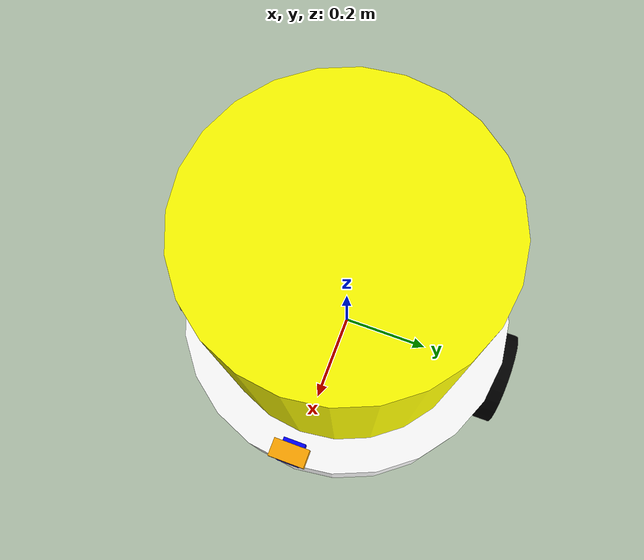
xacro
<?xml version="1.0"?>
<robot name="drug1_robot" xmlns:xacro="http://ros.org/wiki/xacro">
<!-- DRUG1 DIFFERENTIAL DRIVE XACRO -->

    <!-- INCLUDE CYLINDER WHEEL MACRO -->
    <xacro:include filename="$(find robotics)/urdf/robots/cylinder_wheel.urdf.xacro" />
    <xacro:include filename="$(find robotics)/urdf/material.xacro" />
    <xacro:include filename="$(find robotics)/urdf/hokuyo_sensor.xacro" />
    <xacro:include filename="$(find robotics)/urdf/camera.xacro" />

    <!-- PROPERTY LIST -->
    <xacro:property name="robot" value="drug1" />
    <!--All units in m-kg-s-radians unit system -->
    <xacro:property name="M_PI" value="3.1415926535897931" />
    <xacro:property name="M_PI_2" value="1.570796327" />
    <xacro:property name="DEG_TO_RAD" value="0.017453293" />
    <!-- Main Body Cylinder base   -->
    <xacro:property name="base_height" value="0.2" />
    <xacro:property name="base_radius" value="0.375" />
    <xacro:property name="base_mass" value="5" /> <!-- in kg-->
    <!-- Box Cylinder body   -->
    <xacro:property name="box_height" value="0.5" />
    <xacro:property name="box_radius" value="0.3" />
    <xacro:property name="box_mass" value="2" /> <!-- in kg-->
    <!-- caster wheel -->
    <xacro:property name="caster_radius" value="0.06" />
    <xacro:property name="caster_mass" value="0.5" /> <!-- in kg-->

    <!-- MACRO LIST -->
    <!--define caster wheel macro for tag inertial-->
    <xacro:macro name="caster_inertial" params="mass">
        <inertial>
            <mass value="${mass}" />
            <inertia ixx="0.001" ixy="0.0" ixz="0.0"
                 iyy="0.001" iyz="0.0"
                 izz="0.001" />
      </inertial>
    </xacro:macro>

    <!-- LINK -->
    <link name="drug1_base_footprint">
    </link>
    <joint name="drug1_base_footprint_joint" type="fixed">
        <parent link="drug1_base_footprint"/>
        <child link="drug1_base_link"/>
        <origin xyz="0 0 0" rpy="0 0 0"/>
    </joint>

    <!-- BODY -->
    <link name="drug1_base_link">
        <visual>
            <origin xyz="0 0 0" rpy="0 0 0" />
            <xacro:white/>
            <geometry>
                <cylinder length="${base_height}" radius="${base_radius}" />
            </geometry>
        </visual>
        <collision>
            <origin xyz="0 0 0" rpy="0 0 0 " />
            <geometry>
                <cylinder length="${base_height}" radius="${base_radius}" />
            </geometry>
        </collision>
        <inertial>
            <mass value="${base_mass}" />
            <xacro:cylinder_inertia  m="${base_mass}" r="${base_radius}" h="${base_height}" />
        </inertial>
    </link>
    <gazebo reference="drug1_base_link">
        <material>Gazebo/White</material>
    </gazebo>

    <!-- BOX CYLINDER BODY -->
    <link name="box1_link">
        <visual>
            <origin xyz="0 0 0" rpy="0 0 0" />
            <xacro:yellow/>
            <geometry>
                <cylinder length="${box_height}" radius="${box_radius}" />
            </geometry>
        </visual>
        <collision>
            <origin xyz="0 0 0" rpy="0 0 0 " />
            <geometry>
                <cylinder length="${box_height}" radius="${box_radius}" />
            </geometry>
        </collision>
        <inertial>
            <mass value="${box_mass}" />
            <xacro:cylinder_inertia  m="${box_mass}" r="${box_radius}" h="${box_height}" />
        </inertial>
    </link>
    <joint name="box1_joint" type="fixed">
        <parent link="drug1_base_link"/>
        <child link="box1_link"/>
        <origin xyz="0 0 0.35" rpy="0 0 0"/>
    </joint>
    <gazebo reference="box1_link">
        <material>Gazebo/YellowGlow</material>
    </gazebo>

    <!-- WHEELS -->
    <xacro:cylinder_wheel lr="right" parent="drug1_base_link" robot="${robot}" translateX="0" translateY="-1" flipY="1"/>
    <xacro:cylinder_wheel lr="left" parent="drug1_base_link" robot="${robot}" translateX="0" translateY="1" flipY="1"/>

    <!-- CASTER FRONT WHEEL-->
    <link name="drug1_caster_front_wheel">
        <visual>
            <origin xyz="0 0 0" rpy="0 0 0" />
            <xacro:grey/>
            <geometry>
                <sphere radius="${caster_radius}" />
            </geometry>
        </visual>
        <collision>
            <geometry>
                <sphere radius="${caster_radius}" />
            </geometry>
            <origin xyz="0 0 0" rpy="0 0 0" />
        </collision>
        <xacro:caster_inertial mass="0.5"/>
    </link>
    <joint name="drug1_caster_front_wheel_joint" type="fixed">
        <parent link="drug1_base_link"/>
        <child link="drug1_caster_front_wheel"/>
        <origin xyz="0.3 0 -0.085" rpy="0 0 0"/>
    </joint>
    <gazebo reference="drug1_caster_front_wheel">
        <material>Gazebo/GreyTransparent</material>
    </gazebo>

    <!-- CASTER BACK WHEEL-->
    <link name="drug1_caster_back_wheel">
        <visual>
            <origin xyz="0 0 0" rpy="0 0 0" />
            <xacro:grey/>
            <geometry>
                <sphere radius="${caster_radius}" />
            </geometry>
        </visual>
        <collision>
            <geometry>
                <sphere radius="${caster_radius}" />
            </geometry>
            <origin xyz="0 0 0" rpy="0 0 0" />
        </collision>
        <xacro:caster_inertial mass="0.5"/>
    </link>
    <joint name="drug1_caster_back_wheel_joint" type="fixed">
        <parent link="drug1_base_link"/>
        <child link="drug1_caster_back_wheel"/>
        <origin xyz="-0.3 0 -0.085" rpy="0 0 0"/>
    </joint>
    <gazebo reference="drug1_caster_back_wheel">
        <material>Gazebo/GreyTransparent</material>
    </gazebo>

    <!-- SENSORS -->
    <!-- hokuyo -->
    <xacro:hokuyo base_radius="${base_radius}" base_height="${base_height}" robot="${robot}"/>
    <!-- Camera -->
    <xacro:camera base_radius="${base_radius}" base_height="${base_height}" robot="${robot}"/>

    <!-- Gazebo plugin for ROS Control -->
    <gazebo>
        <plugin name="gazebo_ros_control" filename="libgazebo_ros_control.so">
            <controlPeriod>0.001</controlPeriod>
            <robotSimType>gazebo_ros_control/DefaultRobotHWSim</robotSimType>
            <legacyModeNS>true</legacyModeNS>
        </plugin>
    </gazebo>
    <!-- Gazebo plugin for differential drive controller -->
    <gazebo>
        <plugin name="differential_drive_controller" filename="libgazebo_ros_diff_drive.so">
            <legacyMode>true</legacyMode>
            <rosDebugLevel>na</rosDebugLevel>
            <alwaysOn>true</alwaysOn>

            <publishTf>true</publishTf>
            <broadcastTF>true</broadcastTF>
            <publishOdomTF>true</publishOdomTF>
            <publishWheelTF>false</publishWheelTF>
            <publishWheelJointState>false</publishWheelJointState>

            <wheelSeparation>${2*base_radius}</wheelSeparation>
            <wheelDiameter>${2*wheel_radius}</wheelDiameter>
            <updateRate>30.0</updateRate>
            <wheelTorque>30</wheelTorque>
            <wheelAcceleration>1.8</wheelAcceleration>

            <commandTopic>/cmd_vel</commandTopic>
            <odometryTopic>/odom</odometryTopic>
            <odometryFrame>drug1_odom</odometryFrame>
            <odometrySource>world</odometrySource>
            <robotBaseFrame>drug1_base_footprint</robotBaseFrame>
        </plugin>
    </gazebo>

</robot>

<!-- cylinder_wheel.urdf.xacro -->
<robot name="wheel" xmlns:xacro="http://www.ros.org/wiki/xacro">

  <xacro:include filename="$(find robotics)/urdf/material.xacro" />

  <!-- Wheels -->
  <xacro:property name="wheel_radius" value="0.11" />
  <xacro:property name="wheel_height" value="0.06" />
  <xacro:property name="wheel_mass" value="2.5" /> <!-- in kg-->

  <xacro:property name="base_x_origin_to_wheel_origin" value="0.2" />
  <xacro:property name="base_y_origin_to_wheel_origin" value="0.375" />
  <xacro:property name="base_z_origin_to_wheel_origin" value="-0.04" />

  <xacro:macro name="cylinder_inertia" params="m r h">
    <inertia  ixx="${m*(3*r*r+h*h)/12}" ixy = "0" ixz = "0"
              iyy="${m*(3*r*r+h*h)/12}" iyz = "0"
              izz="${m*r*r/2}" />
  </xacro:macro>

  <xacro:macro name="cylinder_wheel" params="lr parent robot translateX translateY flipY"> <!-- lr: left, right -->
    <link name="${robot}_${lr}_wheel">
      <visual>
        <origin xyz="0 0 0" rpy="${flipY*M_PI/2} 0  0 " />
        <geometry>
          <cylinder length="${wheel_height}" radius="${wheel_radius}" />
        </geometry>
        <xacro:black />
      </visual>
      <collision>
        <origin xyz="0 0 0" rpy="${flipY*M_PI/2} 0 0 " />
        <geometry>
          <cylinder length="${wheel_height}" radius="${wheel_radius}" />
        </geometry>
      </collision>
      <inertial>
        <mass value="${wheel_mass}" />
        <origin xyz="0 0 0" />
        <xacro:cylinder_inertia  m="${wheel_mass}" r="${wheel_radius}" h="${wheel_height}" />
      </inertial>
    </link>

    <gazebo reference="${robot}_${lr}_wheel">
      <mu1 value="1.0"/>
      <mu2 value="1.0"/>
      <kp  value="10000000.0" />
      <kd  value="1.0" />
      <fdir1 value="1 0 0"/>
      <material>Gazebo/Black</material>
      <turnGravityOff>false</turnGravityOff>
    </gazebo>

    <joint name="${robot}_${lr}_wheel_joint" type="continuous">
      <parent link="${parent}"/>
      <child link="${robot}_${lr}_wheel"/>
      <origin xyz="${translateX * base_x_origin_to_wheel_origin} ${translateY * base_y_origin_to_wheel_origin} ${base_z_origin_to_wheel_origin}" rpy="0 0 0" />
      <axis xyz="0 1 0" rpy="0  0" />
      <limit effort="100" velocity="50"/>
      <joint_properties damping="0.0" friction="0.0"/>
    </joint>

    <!-- Transmission is important to link the joints and the controller -->
    <transmission name="${robot}_${lr}_wheel_joint_trans">
      <type>transmission_interface/SimpleTransmission</type>
      <joint name="${robot}_${lr}_wheel_joint">
        <hardwareInterface>hardware_interface/VelocityJointInterface</hardwareInterface>
      </joint>
      <actuator name="${robot}_${lr}_wheel_joint_motor">
        <mechanicalReduction>1</mechanicalReduction>
      </actuator>
    </transmission>

  </xacro:macro>
</robot>

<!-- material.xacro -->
<robot name="material" xmlns:xacro="http://ros.org/wiki/xacro">

    <!-- COLOR -->
    <xacro:macro name="black">
        <material name="black">
            <color rgba="0 0 0 1"/>
        </material>
    </xacro:macro>

    <xacro:macro name="white">
        <material name="white">
            <color rgba="1 1 1 1"/>
        </material>
    </xacro:macro>

    <xacro:macro name="cyan">
        <material name="cyan">
            <color rgba="0 1 1 1"/>
        </material>
    </xacro:macro>

    <xacro:macro name="yellow">
        <material name="yellow">
            <color rgba="1 1 0 1"/>
        </material>
    </xacro:macro>

    <xacro:macro name="red">
        <material name="red">
            <color rgba="1 0 0 1"/>
        </material>
    </xacro:macro>

    <xacro:macro name="blue">
        <material name="blue">
            <color rgba=" 0 0 1 1"/>
        </material>
    </xacro:macro>

    <xacro:macro name="orange">
        <material name="orange">
            <color rgba="1 0.65 0 1"/>
        </material>
    </xacro:macro>

    <xacro:macro name="grey">
        <material name="grey">
            <color rgba="0.5 0.5 0.5 1"/>
        </material>
    </xacro:macro>

</robot>

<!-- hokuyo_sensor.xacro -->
<robot name="hokuyo_sensor" xmlns:xacro="http://www.ros.org/wiki/xacro">
<!-- HOKUYO LASER SCANNER -->

    <xacro:include filename="$(find robotics)/urdf/material.xacro" />

    <xacro:property name="hokuyo_size" value="0.05" />

    <xacro:macro name="hokuyo" params="base_radius base_height robot">
        <link name="${robot}_hokuyo_link">
            <visual>
            <origin xyz="0 0 0" rpy="0 0 0" />
            <xacro:blue/>
            <geometry>
                <box size="${hokuyo_size} ${hokuyo_size} ${hokuyo_size}"/>
            </geometry>
            </visual>
        </link>
        <joint name="${robot}_hokuyo_joint" type="fixed">
            <origin xyz="${base_radius - hokuyo_size/2} 0 ${base_height/2+hokuyo_size/4}" rpy="0 0 0" />
            <parent link="${robot}_base_link"/>
            <child link="${robot}_hokuyo_link" />
        </joint>
        <gazebo reference="${robot}_hokuyo_link">
            <material>Gazebo/Blue</material>
            <turnGravityOff>false</turnGravityOff>
            <sensor type="ray" name="head_hokuyo_sensor">
                <pose>${hokuyo_size/2} 0 0 0 0 0</pose>
                <visualize>false</visualize>
                <update_rate>30</update_rate>
                <ray>
                    <scan>
                        <horizontal>
                            <samples>720</samples>
                            <resolution>1</resolution>
                            <min_angle>-1.570796</min_angle>
                            <max_angle>1.570796</max_angle>
                        </horizontal>
                    </scan>
                    <range>
                        <min>0.10</min>
                        <max>10.0</max>
                        <resolution>0.001</resolution>
                    </range>
                </ray>
                <plugin name="gazebo_ros_head_hokuyo_controller" filename="libgazebo_ros_laser.so">
                    <topicName>/${robot}/hokuyo_sensor/scan</topicName>
                    <frameName>${robot}_hokuyo_link</frameName>
                </plugin>
            </sensor>
        </gazebo>
  </xacro:macro>
</robot>

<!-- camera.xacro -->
<robot name="camera" xmlns:xacro="http://www.ros.org/wiki/xacro">
<!-- CAMERA -->

    <xacro:include filename="$(find robotics)/urdf/material.xacro" />

    <xacro:arg name="camera_visual" default="false"/>

    <xacro:property name="cameraLength" value="0.04"/>
    <xacro:property name="cameraWidth" value="0.08"/>
    <xacro:property name="cameraHeight" value="0.03"/>
    <xacro:property name="cameraMass" value="0.01"/>

    <xacro:macro name="camera" params="base_radius base_height robot">
        <link name="${robot}_camera_link">
            <visual>
                <origin xyz="0 0 0" rpy="0 0 0"/>
                <xacro:orange/>
                <geometry>
                    <box size="${cameraLength} ${cameraWidth} ${cameraHeight}"/>
                </geometry>
            </visual>
            <collision>
                <origin xyz="0 0 0" rpy="0 0 0"/>
                <geometry>
                    <box size="${cameraLength} ${cameraWidth} ${cameraHeight}"/>
                </geometry>
            </collision>
        </link>
        <joint name="${robot}_camera_joint" type="fixed">
            <origin xyz="${base_radius - cameraLength/2} 0 ${base_height/2+cameraHeight*7/4}" rpy="0 0 0" />
            <parent link="${robot}_base_link"/>
            <child link="${robot}_camera_link"/>
        </joint>
        <gazebo reference="${robot}_camera_link">
            <material>Gazebo/Orange</material>
            <sensor type="depth" name="realsense_R200">
                <always_on>true</always_on>
                <visualize>$(arg camera_visual)</visualize>
                <camera>
                    <horizontal_fov>1.3439</horizontal_fov>
                    <image>
                        <width>1920</width>
                        <height>1080</height>
                        <format>R8G8B8</format>
                    </image>
                    <depth_camera></depth_camera>
                    <clip>
                        <near>0.03</near>
                        <far>100</far>
                    </clip>
                </camera>
                <plugin name="camera_controller" filename="libgazebo_ros_openni_kinect.so">
                    <baseline>0.2</baseline>
                    <alwaysOn>true</alwaysOn>
                    <updateRate>30.0</updateRate>
                    <cameraName>camera</cameraName>
                    <frameName>${robot}_camera_link</frameName>
                    <imageTopicName>rgb/image_raw</imageTopicName>
                    <depthImageTopicName>depth/image_raw</depthImageTopicName>
                    <pointCloudTopicName>depth/points</pointCloudTopicName>
                    <cameraInfoTopicName>rgb/camera_info</cameraInfoTopicName>
                    <depthImageCameraInfoTopicName>depth/camera_info</depthImageCameraInfoTopicName>
                    <pointCloudCutoff>0.4</pointCloudCutoff>
                    <hackBaseline>0.07</hackBaseline>
                    <distortionK1>0.0</distortionK1>
                    <distortionK2>0.0</distortionK2>
                    <distortionK3>0.0</distortionK3>
                    <distortionT1>0.0</distortionT1>
                    <distortionT2>0.0</distortionT2>
                    <CxPrime>0.0</CxPrime>
                    <Cx>0.0</Cx>
                    <Cy>0.0</Cy>
                    <focalLength>0</focalLength>
                    <hackBaseline>0</hackBaseline>
                </plugin>
            </sensor>
        </gazebo>
    </xacro:macro>
</robot>
